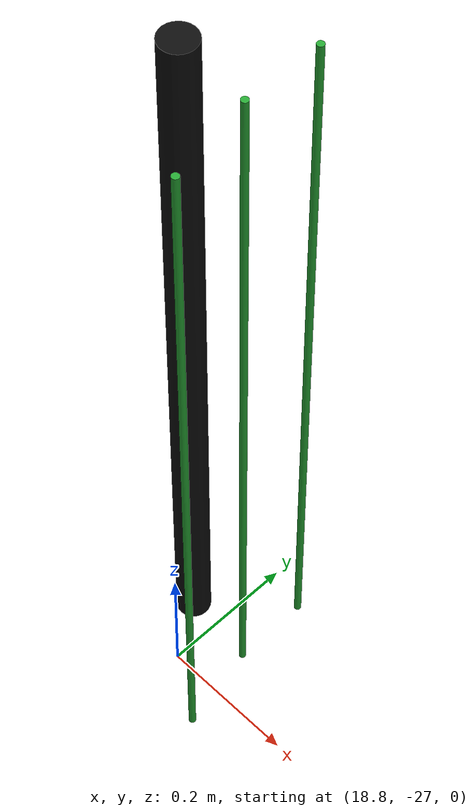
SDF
<sdf version="1.6">
 <world name="default">
  <model name="pole_32">
   <static>1</static>
   <pose>18.75 -26.92 0.575 0 -0 0</pose>
   <link name="link">
    <collision name="collision">
     <geometry><cylinder><length>1.15</length><radius>0.025</radius></cylinder></geometry>
    </collision>
    <visual name="visual">
     <geometry><cylinder><length>1.15</length><radius>0.025</radius></cylinder></geometry>
     <material>
      <script><uri>file://media/materials/scripts/gazebo.material</uri><name>Gazebo/Chrome</name></script>
      <shader type="vertex"><normal_map>__default__</normal_map></shader>
      <emissive>0.1 0.1 0.1 1</emissive>
      <specular>0.01 0.01 0.01 1</specular>
      <ambient>0.5 0.5 0.5 1</ambient>
      <diffuse>0.05 0.05 0.05 1</diffuse>
     </material>
    </visual>
   </link>
  </model>
  <model name="pole_27_clone_clone_222">
   <link name="link">
    <inertial>
     <mass>1</mass>
     <inertia><ixx>1</ixx><ixy>0</ixy><ixz>0</ixz><iyy>1</iyy><iyz>0</iyz><izz>1</izz></inertia>
    </inertial>
    <visual name="visual">
     <geometry><cylinder><length>1.15</length><radius>0.005</radius></cylinder></geometry>
     <material>
      <script><uri>file://media/materials/scripts/gazebo.material</uri><name>Gazebo/Green</name></script>
      <shader type="vertex"><normal_map>__default__</normal_map></shader>
      <emissive>0 0.1 0 1</emissive>
      <specular>0 0.01 0 1</specular>
      <ambient>0 0.5 0 1</ambient>
      <diffuse>0 0.05 0 1</diffuse>
     </material>
    </visual>
    <collision name="collision">
     <geometry><cylinder><radius>0.005</radius><length>1.15</length></cylinder></geometry>
     <surface>
      <friction>
       <ode><mu>1</mu><mu2>1</mu2><fdir1>0 0 0</fdir1><slip1>0</slip1><slip2>0</slip2></ode>
       <torsional>
        <coefficient>1</coefficient>
        <patch_radius>0</patch_radius>
        <surface_radius>0</surface_radius>
        <use_patch_radius>1</use_patch_radius>
        <ode><slip>0</slip></ode>
       </torsional>
      </friction>
      <bounce><restitution_coefficient>0</restitution_coefficient><threshold>1e+06</threshold></bounce>
      <contact>
       <collide_without_contact>0</collide_without_contact>
       <collide_without_contact_bitmask>1</collide_without_contact_bitmask>
       <collide_bitmask>1</collide_bitmask>
       <ode>
        <soft_cfm>0</soft_cfm>
        <soft_erp>0.2</soft_erp>
        <kp>1e+13</kp>
        <kd>1</kd>
        <max_vel>0.01</max_vel>
        <min_depth>0</min_depth>
       </ode>
       <bullet>
        <split_impulse>1</split_impulse>
        <split_impulse_penetration_threshold>-0.01</split_impulse_penetration_threshold>
        <soft_cfm>0</soft_cfm>
        <soft_erp>0.2</soft_erp>
        <kp>1e+13</kp>
        <kd>1</kd>
       </bullet>
      </contact>
     </surface>
    </collision>
   </link>
   <static>1</static>
   <pose>18.8624 -26.9321 0.575 0 -0 0</pose>
  </model>
  <model name="pole_27_clone_clone_224">
   <link name="link">
    <inertial>
     <mass>1</mass>
     <inertia><ixx>1</ixx><ixy>0</ixy><ixz>0</ixz><iyy>1</iyy><iyz>0</iyz><izz>1</izz></inertia>
    </inertial>
    <visual name="visual">
     <geometry><cylinder><length>1.15</length><radius>0.005</radius></cylinder></geometry>
     <material>
      <script><uri>file://media/materials/scripts/gazebo.material</uri><name>Gazebo/Green</name></script>
      <shader type="vertex"><normal_map>__default__</normal_map></shader>
      <emissive>0 0.1 0 1</emissive>
      <specular>0 0.01 0 1</specular>
      <ambient>0 0.5 0 1</ambient>
      <diffuse>0 0.05 0 1</diffuse>
     </material>
    </visual>
    <collision name="collision">
     <geometry><cylinder><radius>0.005</radius><length>1.15</length></cylinder></geometry>
     <surface>
      <friction>
       <ode><mu>1</mu><mu2>1</mu2><fdir1>0 0 0</fdir1><slip1>0</slip1><slip2>0</slip2></ode>
       <torsional>
        <coefficient>1</coefficient>
        <patch_radius>0</patch_radius>
        <surface_radius>0</surface_radius>
        <use_patch_radius>1</use_patch_radius>
        <ode><slip>0</slip></ode>
       </torsional>
      </friction>
      <bounce><restitution_coefficient>0</restitution_coefficient><threshold>1e+06</threshold></bounce>
      <contact>
       <collide_without_contact>0</collide_without_contact>
       <collide_without_contact_bitmask>1</collide_without_contact_bitmask>
       <collide_bitmask>1</collide_bitmask>
       <ode>
        <soft_cfm>0</soft_cfm>
        <soft_erp>0.2</soft_erp>
        <kp>1e+13</kp>
        <kd>1</kd>
        <max_vel>0.01</max_vel>
        <min_depth>0</min_depth>
       </ode>
       <bullet>
        <split_impulse>1</split_impulse>
        <split_impulse_penetration_threshold>-0.01</split_impulse_penetration_threshold>
        <soft_cfm>0</soft_cfm>
        <soft_erp>0.2</soft_erp>
        <kp>1e+13</kp>
        <kd>1</kd>
       </bullet>
      </contact>
     </surface>
    </collision>
   </link>
   <static>1</static>
   <pose>18.8874 -27.0557 0.575 0 -0 0</pose>
  </model>
  <model name="pole_27_clone_clone_226">
   <link name="link">
    <inertial>
     <mass>1</mass>
     <inertia><ixx>1</ixx><ixy>0</ixy><ixz>0</ixz><iyy>1</iyy><iyz>0</iyz><izz>1</izz></inertia>
    </inertial>
    <visual name="visual">
     <geometry><cylinder><length>1.15</length><radius>0.005</radius></cylinder></geometry>
     <material>
      <script><uri>file://media/materials/scripts/gazebo.material</uri><name>Gazebo/Green</name></script>
      <shader type="vertex"><normal_map>__default__</normal_map></shader>
      <emissive>0 0.1 0 1</emissive>
      <specular>0 0.01 0 1</specular>
      <ambient>0 0.5 0 1</ambient>
      <diffuse>0 0.05 0 1</diffuse>
     </material>
    </visual>
    <collision name="collision">
     <geometry><cylinder><radius>0.005</radius><length>1.15</length></cylinder></geometry>
     <surface>
      <friction>
       <ode><mu>1</mu><mu2>1</mu2><fdir1>0 0 0</fdir1><slip1>0</slip1><slip2>0</slip2></ode>
       <torsional>
        <coefficient>1</coefficient>
        <patch_radius>0</patch_radius>
        <surface_radius>0</surface_radius>
        <use_patch_radius>1</use_patch_radius>
        <ode><slip>0</slip></ode>
       </torsional>
      </friction>
      <bounce><restitution_coefficient>0</restitution_coefficient><threshold>1e+06</threshold></bounce>
      <contact>
       <collide_without_contact>0</collide_without_contact>
       <collide_without_contact_bitmask>1</collide_without_contact_bitmask>
       <collide_bitmask>1</collide_bitmask>
       <ode>
        <soft_cfm>0</soft_cfm>
        <soft_erp>0.2</soft_erp>
        <kp>1e+13</kp>
        <kd>1</kd>
        <max_vel>0.01</max_vel>
        <min_depth>0</min_depth>
       </ode>
       <bullet>
        <split_impulse>1</split_impulse>
        <split_impulse_penetration_threshold>-0.01</split_impulse_penetration_threshold>
        <soft_cfm>0</soft_cfm>
        <soft_erp>0.2</soft_erp>
        <kp>1e+13</kp>
        <kd>1</kd>
       </bullet>
      </contact>
     </surface>
    </collision>
   </link>
   <static>1</static>
   <pose>18.8618 -26.819 0.575 0 -0 0</pose>
  </model>
 </world>
</sdf>
